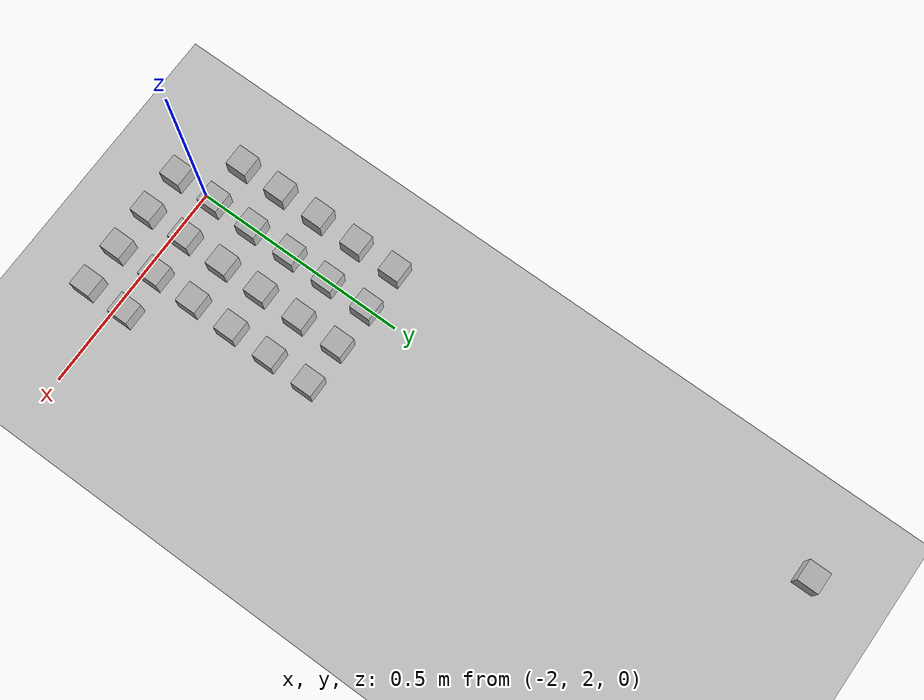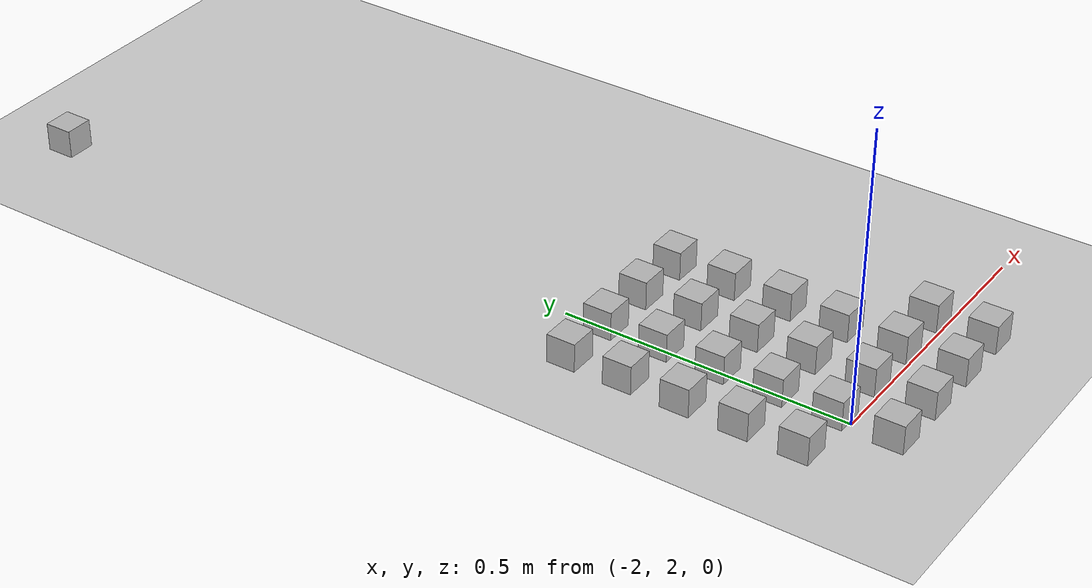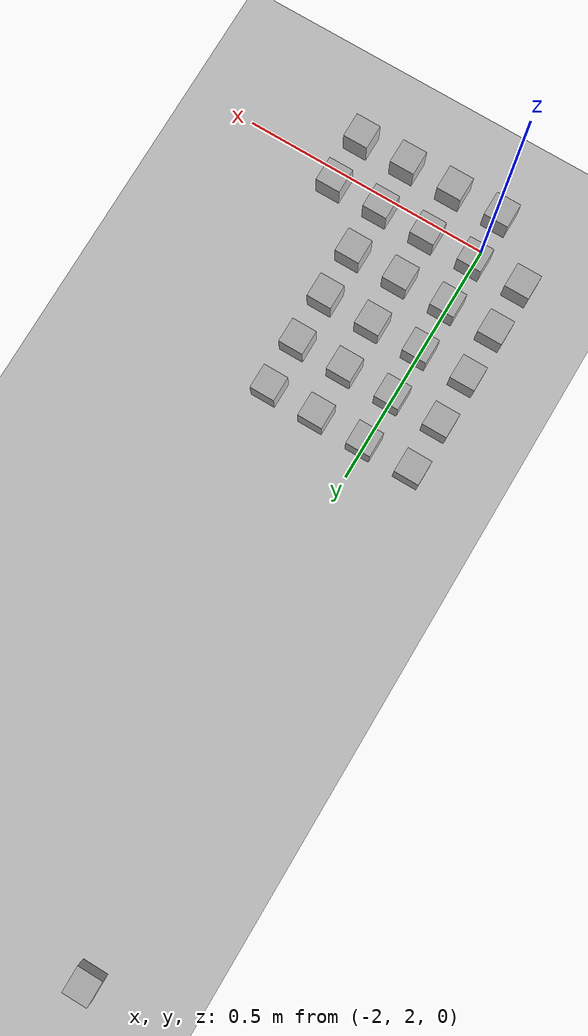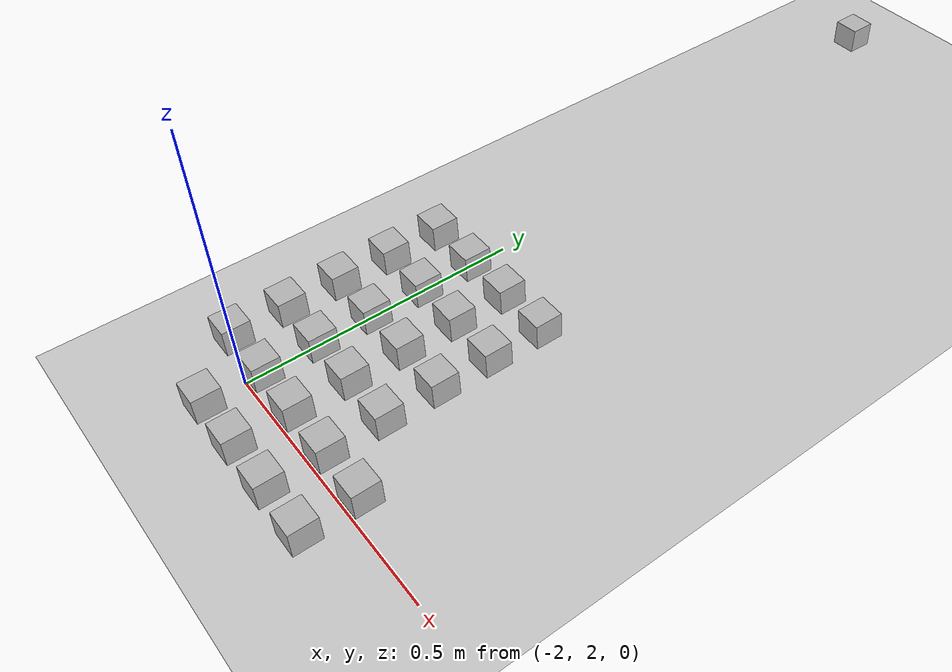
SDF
<sdf version="1.6">
 <world name="default">
  <model name="ground_plane">
   <static>1</static>
   <link name="link">
    <collision name="collision">
     <geometry><plane><normal>0 0 1</normal><size>100 100</size></plane></geometry>
     <surface><friction><ode><mu>100</mu><mu2>50</mu2></ode></friction></surface>
    </collision>
    <visual name="visual">
     <cast_shadows>0</cast_shadows>
     <geometry><plane><normal>0 0 1</normal><size>100 100</size></plane></geometry>
     <material>
      <script><uri>file://media/materials/scripts/gazebo.material</uri><name>Gazebo/Grey</name></script>
     </material>
    </visual>
   </link>
  </model>
  <model name="at18">
   <static>0</static>
   <link name="link">
    <inertial>
     <mass>0.01</mass>
     <inertia><ixx>4e-05</ixx><ixy>0</ixy><ixz>0</ixz><iyy>4e-05</iyy><iyz>0</iyz><izz>4e-05</izz></inertia>
    </inertial>
    <visual name="visual">
     <geometry><box><size>0.05 0.05 0.05</size></box></geometry>
     <material>
      <script>
       <uri>model://at0/materials/scripts</uri>
       <uri>model://at0/materials/textures</uri>
       <name>at0/Diffuse</name>
      </script>
     </material>
    </visual>
    <collision name="collision">
     <geometry><box><size>0.05 0.05 0.05</size></box></geometry>
     <surface><friction><ode><mu>0.8</mu><mu2>0.7</mu2></ode></friction></surface>
    </collision>
   </link>
   <pose>-1.99673 1.92921 0.024993 -2.9e-05 2.9e-05 -2e-06</pose>
  </model>
  <model name="at19">
   <static>0</static>
   <link name="link">
    <inertial>
     <mass>0.01</mass>
     <inertia><ixx>4e-05</ixx><ixy>0</ixy><ixz>0</ixz><iyy>4e-05</iyy><iyz>0</iyz><izz>4e-05</izz></inertia>
    </inertial>
    <visual name="visual">
     <geometry><box><size>0.05 0.05 0.05</size></box></geometry>
     <material>
      <script>
       <uri>model://at0/materials/scripts</uri>
       <uri>model://at0/materials/textures</uri>
       <name>at0/Diffuse</name>
      </script>
     </material>
    </visual>
    <collision name="collision">
     <geometry><box><size>0.05 0.05 0.05</size></box></geometry>
     <surface><friction><ode><mu>0.8</mu><mu2>0.7</mu2></ode></friction></surface>
    </collision>
   </link>
   <pose>-1.89673 1.92921 0.024993 2.9e-05 -2.9e-05 -2e-06</pose>
  </model>
  <model name="at20">
   <static>0</static>
   <link name="link">
    <inertial>
     <mass>0.01</mass>
     <inertia><ixx>4e-05</ixx><ixy>0</ixy><ixz>0</ixz><iyy>4e-05</iyy><iyz>0</iyz><izz>4e-05</izz></inertia>
    </inertial>
    <visual name="visual">
     <geometry><box><size>0.05 0.05 0.05</size></box></geometry>
     <material>
      <script>
       <uri>model://at0/materials/scripts</uri>
       <uri>model://at0/materials/textures</uri>
       <name>at0/Diffuse</name>
      </script>
     </material>
    </visual>
    <collision name="collision">
     <geometry><box><size>0.05 0.05 0.05</size></box></geometry>
     <surface><friction><ode><mu>0.8</mu><mu2>0.7</mu2></ode></friction></surface>
    </collision>
   </link>
   <pose>-1.79673 1.92921 0.024993 -2.9e-05 2.9e-05 -2e-06</pose>
  </model>
  <model name="at21">
   <static>0</static>
   <link name="link">
    <inertial>
     <mass>0.01</mass>
     <inertia><ixx>4e-05</ixx><ixy>0</ixy><ixz>0</ixz><iyy>4e-05</iyy><iyz>0</iyz><izz>4e-05</izz></inertia>
    </inertial>
    <visual name="visual">
     <geometry><box><size>0.05 0.05 0.05</size></box></geometry>
     <material>
      <script>
       <uri>model://at0/materials/scripts</uri>
       <uri>model://at0/materials/textures</uri>
       <name>at0/Diffuse</name>
      </script>
     </material>
    </visual>
    <collision name="collision">
     <geometry><box><size>0.05 0.05 0.05</size></box></geometry>
     <surface><friction><ode><mu>0.8</mu><mu2>0.7</mu2></ode></friction></surface>
    </collision>
   </link>
   <pose>-1.69673 1.92921 0.024993 2.9e-05 -2.9e-05 -2e-06</pose>
  </model>
  <model name="at25">
   <static>0</static>
   <link name="link">
    <inertial>
     <mass>0.01</mass>
     <inertia><ixx>4e-05</ixx><ixy>0</ixy><ixz>0</ixz><iyy>4e-05</iyy><iyz>0</iyz><izz>4e-05</izz></inertia>
    </inertial>
    <visual name="visual">
     <geometry><box><size>0.05 0.05 0.05</size></box></geometry>
     <material>
      <script>
       <uri>model://at0/materials/scripts</uri>
       <uri>model://at0/materials/textures</uri>
       <name>at0/Diffuse</name>
      </script>
     </material>
    </visual>
    <collision name="collision">
     <geometry><box><size>0.05 0.05 0.05</size></box></geometry>
     <surface><friction><ode><mu>0.8</mu><mu2>0.7</mu2></ode></friction></surface>
    </collision>
   </link>
   <pose>-2.09673 2.02921 0.024993 2.9e-05 -2.9e-05 -2e-06</pose>
  </model>
  <model name="at26">
   <static>0</static>
   <link name="link">
    <inertial>
     <mass>0.01</mass>
     <inertia><ixx>4e-05</ixx><ixy>0</ixy><ixz>0</ixz><iyy>4e-05</iyy><iyz>0</iyz><izz>4e-05</izz></inertia>
    </inertial>
    <visual name="visual">
     <geometry><box><size>0.05 0.05 0.05</size></box></geometry>
     <material>
      <script>
       <uri>model://at0/materials/scripts</uri>
       <uri>model://at0/materials/textures</uri>
       <name>at0/Diffuse</name>
      </script>
     </material>
    </visual>
    <collision name="collision">
     <geometry><box><size>0.05 0.05 0.05</size></box></geometry>
     <surface><friction><ode><mu>0.8</mu><mu2>0.7</mu2></ode></friction></surface>
    </collision>
   </link>
   <pose>-1.99673 2.02921 0.024993 -2.9e-05 2.9e-05 -2e-06</pose>
  </model>
  <model name="at27">
   <static>0</static>
   <link name="link">
    <inertial>
     <mass>0.01</mass>
     <inertia><ixx>4e-05</ixx><ixy>0</ixy><ixz>0</ixz><iyy>4e-05</iyy><iyz>0</iyz><izz>4e-05</izz></inertia>
    </inertial>
    <visual name="visual">
     <geometry><box><size>0.05 0.05 0.05</size></box></geometry>
     <material>
      <script>
       <uri>model://at0/materials/scripts</uri>
       <uri>model://at0/materials/textures</uri>
       <name>at0/Diffuse</name>
      </script>
     </material>
    </visual>
    <collision name="collision">
     <geometry><box><size>0.05 0.05 0.05</size></box></geometry>
     <surface><friction><ode><mu>0.8</mu><mu2>0.7</mu2></ode></friction></surface>
    </collision>
   </link>
   <pose>-1.89673 2.02921 0.024993 2.9e-05 -2.9e-05 -2e-06</pose>
  </model>
  <model name="at28">
   <static>0</static>
   <link name="link">
    <inertial>
     <mass>0.01</mass>
     <inertia><ixx>4e-05</ixx><ixy>0</ixy><ixz>0</ixz><iyy>4e-05</iyy><iyz>0</iyz><izz>4e-05</izz></inertia>
    </inertial>
    <visual name="visual">
     <geometry><box><size>0.05 0.05 0.05</size></box></geometry>
     <material>
      <script>
       <uri>model://at0/materials/scripts</uri>
       <uri>model://at0/materials/textures</uri>
       <name>at0/Diffuse</name>
      </script>
     </material>
    </visual>
    <collision name="collision">
     <geometry><box><size>0.05 0.05 0.05</size></box></geometry>
     <surface><friction><ode><mu>0.8</mu><mu2>0.7</mu2></ode></friction></surface>
    </collision>
   </link>
   <pose>-1.79673 2.02921 0.024993 -2.9e-05 2.9e-05 -2e-06</pose>
  </model>
  <model name="at29">
   <static>0</static>
   <link name="link">
    <inertial>
     <mass>0.01</mass>
     <inertia><ixx>4e-05</ixx><ixy>0</ixy><ixz>0</ixz><iyy>4e-05</iyy><iyz>0</iyz><izz>4e-05</izz></inertia>
    </inertial>
    <visual name="visual">
     <geometry><box><size>0.05 0.05 0.05</size></box></geometry>
     <material>
      <script>
       <uri>model://at0/materials/scripts</uri>
       <uri>model://at0/materials/textures</uri>
       <name>at0/Diffuse</name>
      </script>
     </material>
    </visual>
    <collision name="collision">
     <geometry><box><size>0.05 0.05 0.05</size></box></geometry>
     <surface><friction><ode><mu>0.8</mu><mu2>0.7</mu2></ode></friction></surface>
    </collision>
   </link>
   <pose>-1.69673 2.02921 0.024993 2.9e-05 -2.9e-05 -2e-06</pose>
  </model>
  <model name="at33">
   <static>0</static>
   <link name="link">
    <inertial>
     <mass>0.01</mass>
     <inertia><ixx>4e-05</ixx><ixy>0</ixy><ixz>0</ixz><iyy>4e-05</iyy><iyz>0</iyz><izz>4e-05</izz></inertia>
    </inertial>
    <visual name="visual">
     <geometry><box><size>0.05 0.05 0.05</size></box></geometry>
     <material>
      <script>
       <uri>model://at0/materials/scripts</uri>
       <uri>model://at0/materials/textures</uri>
       <name>at0/Diffuse</name>
      </script>
     </material>
    </visual>
    <collision name="collision">
     <geometry><box><size>0.05 0.05 0.05</size></box></geometry>
     <surface><friction><ode><mu>0.8</mu><mu2>0.7</mu2></ode></friction></surface>
    </collision>
   </link>
   <pose>-2.09673 2.12921 0.024993 2.9e-05 -2.9e-05 -2e-06</pose>
  </model>
  <model name="at34">
   <static>0</static>
   <link name="link">
    <inertial>
     <mass>0.01</mass>
     <inertia><ixx>4e-05</ixx><ixy>0</ixy><ixz>0</ixz><iyy>4e-05</iyy><iyz>0</iyz><izz>4e-05</izz></inertia>
    </inertial>
    <visual name="visual">
     <geometry><box><size>0.05 0.05 0.05</size></box></geometry>
     <material>
      <script>
       <uri>model://at0/materials/scripts</uri>
       <uri>model://at0/materials/textures</uri>
       <name>at0/Diffuse</name>
      </script>
     </material>
    </visual>
    <collision name="collision">
     <geometry><box><size>0.05 0.05 0.05</size></box></geometry>
     <surface><friction><ode><mu>0.8</mu><mu2>0.7</mu2></ode></friction></surface>
    </collision>
   </link>
   <pose>-1.99673 2.12921 0.024993 -2.9e-05 2.9e-05 -2e-06</pose>
  </model>
  <model name="at35">
   <static>0</static>
   <link name="link">
    <inertial>
     <mass>0.01</mass>
     <inertia><ixx>4e-05</ixx><ixy>0</ixy><ixz>0</ixz><iyy>4e-05</iyy><iyz>0</iyz><izz>4e-05</izz></inertia>
    </inertial>
    <visual name="visual">
     <geometry><box><size>0.05 0.05 0.05</size></box></geometry>
     <material>
      <script>
       <uri>model://at0/materials/scripts</uri>
       <uri>model://at0/materials/textures</uri>
       <name>at0/Diffuse</name>
      </script>
     </material>
    </visual>
    <collision name="collision">
     <geometry><box><size>0.05 0.05 0.05</size></box></geometry>
     <surface><friction><ode><mu>0.8</mu><mu2>0.7</mu2></ode></friction></surface>
    </collision>
   </link>
   <pose>-1.89673 2.12921 0.024993 2.9e-05 -2.9e-05 -2e-06</pose>
  </model>
  <model name="at36">
   <static>0</static>
   <link name="link">
    <inertial>
     <mass>0.01</mass>
     <inertia><ixx>4e-05</ixx><ixy>0</ixy><ixz>0</ixz><iyy>4e-05</iyy><iyz>0</iyz><izz>4e-05</izz></inertia>
    </inertial>
    <visual name="visual">
     <geometry><box><size>0.05 0.05 0.05</size></box></geometry>
     <material>
      <script>
       <uri>model://at0/materials/scripts</uri>
       <uri>model://at0/materials/textures</uri>
       <name>at0/Diffuse</name>
      </script>
     </material>
    </visual>
    <collision name="collision">
     <geometry><box><size>0.05 0.05 0.05</size></box></geometry>
     <surface><friction><ode><mu>0.8</mu><mu2>0.7</mu2></ode></friction></surface>
    </collision>
   </link>
   <pose>-1.79673 2.12921 0.024993 2.9e-05 -2.9e-05 -2e-06</pose>
  </model>
  <model name="at41">
   <static>0</static>
   <link name="link">
    <inertial>
     <mass>0.01</mass>
     <inertia><ixx>4e-05</ixx><ixy>0</ixy><ixz>0</ixz><iyy>4e-05</iyy><iyz>0</iyz><izz>4e-05</izz></inertia>
    </inertial>
    <visual name="visual">
     <geometry><box><size>0.05 0.05 0.05</size></box></geometry>
     <material>
      <script>
       <uri>model://at0/materials/scripts</uri>
       <uri>model://at0/materials/textures</uri>
       <name>at0/Diffuse</name>
      </script>
     </material>
    </visual>
    <collision name="collision">
     <geometry><box><size>0.05 0.05 0.05</size></box></geometry>
     <surface><friction><ode><mu>0.8</mu><mu2>0.7</mu2></ode></friction></surface>
    </collision>
   </link>
   <pose>-2.09673 2.22921 0.024993 2.9e-05 -2.9e-05 -2e-06</pose>
  </model>
  <model name="at42">
   <static>0</static>
   <link name="link">
    <inertial>
     <mass>0.01</mass>
     <inertia><ixx>4e-05</ixx><ixy>0</ixy><ixz>0</ixz><iyy>4e-05</iyy><iyz>0</iyz><izz>4e-05</izz></inertia>
    </inertial>
    <visual name="visual">
     <geometry><box><size>0.05 0.05 0.05</size></box></geometry>
     <material>
      <script>
       <uri>model://at0/materials/scripts</uri>
       <uri>model://at0/materials/textures</uri>
       <name>at0/Diffuse</name>
      </script>
     </material>
    </visual>
    <collision name="collision">
     <geometry><box><size>0.05 0.05 0.05</size></box></geometry>
     <surface><friction><ode><mu>0.8</mu><mu2>0.7</mu2></ode></friction></surface>
    </collision>
   </link>
   <pose>-1.99673 2.22921 0.024993 -2.9e-05 2.9e-05 -2e-06</pose>
  </model>
  <model name="at43">
   <static>0</static>
   <link name="link">
    <inertial>
     <mass>0.01</mass>
     <inertia><ixx>4e-05</ixx><ixy>0</ixy><ixz>0</ixz><iyy>4e-05</iyy><iyz>0</iyz><izz>4e-05</izz></inertia>
    </inertial>
    <visual name="visual">
     <geometry><box><size>0.05 0.05 0.05</size></box></geometry>
     <material>
      <script>
       <uri>model://at0/materials/scripts</uri>
       <uri>model://at0/materials/textures</uri>
       <name>at0/Diffuse</name>
      </script>
     </material>
    </visual>
    <collision name="collision">
     <geometry><box><size>0.05 0.05 0.05</size></box></geometry>
     <surface><friction><ode><mu>0.8</mu><mu2>0.7</mu2></ode></friction></surface>
    </collision>
   </link>
   <pose>-1.89673 2.22921 0.024993 -2.9e-05 2.9e-05 -2e-06</pose>
  </model>
  <model name="at44">
   <static>0</static>
   <link name="link">
    <inertial>
     <mass>0.01</mass>
     <inertia><ixx>4e-05</ixx><ixy>0</ixy><ixz>0</ixz><iyy>4e-05</iyy><iyz>0</iyz><izz>4e-05</izz></inertia>
    </inertial>
    <visual name="visual">
     <geometry><box><size>0.05 0.05 0.05</size></box></geometry>
     <material>
      <script>
       <uri>model://at0/materials/scripts</uri>
       <uri>model://at0/materials/textures</uri>
       <name>at0/Diffuse</name>
      </script>
     </material>
    </visual>
    <collision name="collision">
     <geometry><box><size>0.05 0.05 0.05</size></box></geometry>
     <surface><friction><ode><mu>0.8</mu><mu2>0.7</mu2></ode></friction></surface>
    </collision>
   </link>
   <pose>-1.79673 2.22921 0.024993 -2.9e-05 2.9e-05 -2e-06</pose>
  </model>
  <model name="at49">
   <static>0</static>
   <link name="link">
    <inertial>
     <mass>0.01</mass>
     <inertia><ixx>4e-05</ixx><ixy>0</ixy><ixz>0</ixz><iyy>4e-05</iyy><iyz>0</iyz><izz>4e-05</izz></inertia>
    </inertial>
    <visual name="visual">
     <geometry><box><size>0.05 0.05 0.05</size></box></geometry>
     <material>
      <script>
       <uri>model://at0/materials/scripts</uri>
       <uri>model://at0/materials/textures</uri>
       <name>at0/Diffuse</name>
      </script>
     </material>
    </visual>
    <collision name="collision">
     <geometry><box><size>0.05 0.05 0.05</size></box></geometry>
     <surface><friction><ode><mu>0.8</mu><mu2>0.7</mu2></ode></friction></surface>
    </collision>
   </link>
   <pose>-2.09673 2.32921 0.024993 -2.9e-05 2.9e-05 -2e-06</pose>
  </model>
  <model name="at50">
   <static>0</static>
   <link name="link">
    <inertial>
     <mass>0.01</mass>
     <inertia><ixx>4e-05</ixx><ixy>0</ixy><ixz>0</ixz><iyy>4e-05</iyy><iyz>0</iyz><izz>4e-05</izz></inertia>
    </inertial>
    <visual name="visual">
     <geometry><box><size>0.05 0.05 0.05</size></box></geometry>
     <material>
      <script>
       <uri>model://at0/materials/scripts</uri>
       <uri>model://at0/materials/textures</uri>
       <name>at0/Diffuse</name>
      </script>
     </material>
    </visual>
    <collision name="collision">
     <geometry><box><size>0.05 0.05 0.05</size></box></geometry>
     <surface><friction><ode><mu>0.8</mu><mu2>0.7</mu2></ode></friction></surface>
    </collision>
   </link>
   <pose>-1.99673 2.32921 0.024993 2.9e-05 -2.9e-05 -2e-06</pose>
  </model>
  <model name="at51">
   <static>0</static>
   <link name="link">
    <inertial>
     <mass>0.01</mass>
     <inertia><ixx>4e-05</ixx><ixy>0</ixy><ixz>0</ixz><iyy>4e-05</iyy><iyz>0</iyz><izz>4e-05</izz></inertia>
    </inertial>
    <visual name="visual">
     <geometry><box><size>0.05 0.05 0.05</size></box></geometry>
     <material>
      <script>
       <uri>model://at0/materials/scripts</uri>
       <uri>model://at0/materials/textures</uri>
       <name>at0/Diffuse</name>
      </script>
     </material>
    </visual>
    <collision name="collision">
     <geometry><box><size>0.05 0.05 0.05</size></box></geometry>
     <surface><friction><ode><mu>0.8</mu><mu2>0.7</mu2></ode></friction></surface>
    </collision>
   </link>
   <pose>-1.89673 2.32921 0.024993 2.9e-05 -2.9e-05 -2e-06</pose>
  </model>
  <model name="at52">
   <static>0</static>
   <link name="link">
    <inertial>
     <mass>0.01</mass>
     <inertia><ixx>4e-05</ixx><ixy>0</ixy><ixz>0</ixz><iyy>4e-05</iyy><iyz>0</iyz><izz>4e-05</izz></inertia>
    </inertial>
    <visual name="visual">
     <geometry><box><size>0.05 0.05 0.05</size></box></geometry>
     <material>
      <script>
       <uri>model://at0/materials/scripts</uri>
       <uri>model://at0/materials/textures</uri>
       <name>at0/Diffuse</name>
      </script>
     </material>
    </visual>
    <collision name="collision">
     <geometry><box><size>0.05 0.05 0.05</size></box></geometry>
     <surface><friction><ode><mu>0.8</mu><mu2>0.7</mu2></ode></friction></surface>
    </collision>
   </link>
   <pose>-1.79673 2.32921 0.024993 -2.9e-05 2.9e-05 -2e-06</pose>
  </model>
  <model name="at57">
   <static>0</static>
   <link name="link">
    <inertial>
     <mass>0.01</mass>
     <inertia><ixx>4e-05</ixx><ixy>0</ixy><ixz>0</ixz><iyy>4e-05</iyy><iyz>0</iyz><izz>4e-05</izz></inertia>
    </inertial>
    <visual name="visual">
     <geometry><box><size>0.05 0.05 0.05</size></box></geometry>
     <material>
      <script>
       <uri>model://at0/materials/scripts</uri>
       <uri>model://at0/materials/textures</uri>
       <name>at0/Diffuse</name>
      </script>
     </material>
    </visual>
    <collision name="collision">
     <geometry><box><size>0.05 0.05 0.05</size></box></geometry>
     <surface><friction><ode><mu>0.8</mu><mu2>0.7</mu2></ode></friction></surface>
    </collision>
   </link>
   <pose>-2.09673 2.42921 0.024993 -2.9e-05 2.9e-05 -2e-06</pose>
  </model>
  <model name="at58">
   <static>0</static>
   <link name="link">
    <inertial>
     <mass>0.01</mass>
     <inertia><ixx>4e-05</ixx><ixy>0</ixy><ixz>0</ixz><iyy>4e-05</iyy><iyz>0</iyz><izz>4e-05</izz></inertia>
    </inertial>
    <visual name="visual">
     <geometry><box><size>0.05 0.05 0.05</size></box></geometry>
     <material>
      <script>
       <uri>model://at0/materials/scripts</uri>
       <uri>model://at0/materials/textures</uri>
       <name>at0/Diffuse</name>
      </script>
     </material>
    </visual>
    <collision name="collision">
     <geometry><box><size>0.05 0.05 0.05</size></box></geometry>
     <surface><friction><ode><mu>0.8</mu><mu2>0.7</mu2></ode></friction></surface>
    </collision>
   </link>
   <pose>-1.99673 2.42921 0.024993 2.9e-05 -2.9e-05 -2e-06</pose>
  </model>
  <model name="at59">
   <static>0</static>
   <link name="link">
    <inertial>
     <mass>0.01</mass>
     <inertia><ixx>4e-05</ixx><ixy>0</ixy><ixz>0</ixz><iyy>4e-05</iyy><iyz>0</iyz><izz>4e-05</izz></inertia>
    </inertial>
    <visual name="visual">
     <geometry><box><size>0.05 0.05 0.05</size></box></geometry>
     <material>
      <script>
       <uri>model://at0/materials/scripts</uri>
       <uri>model://at0/materials/textures</uri>
       <name>at0/Diffuse</name>
      </script>
     </material>
    </visual>
    <collision name="collision">
     <geometry><box><size>0.05 0.05 0.05</size></box></geometry>
     <surface><friction><ode><mu>0.8</mu><mu2>0.7</mu2></ode></friction></surface>
    </collision>
   </link>
   <pose>-1.89673 2.42921 0.024993 -2.9e-05 2.9e-05 -2e-06</pose>
  </model>
  <model name="at60">
   <static>0</static>
   <link name="link">
    <inertial>
     <mass>0.01</mass>
     <inertia><ixx>4e-05</ixx><ixy>0</ixy><ixz>0</ixz><iyy>4e-05</iyy><iyz>0</iyz><izz>4e-05</izz></inertia>
    </inertial>
    <visual name="visual">
     <geometry><box><size>0.05 0.05 0.05</size></box></geometry>
     <material>
      <script>
       <uri>model://at0/materials/scripts</uri>
       <uri>model://at0/materials/textures</uri>
       <name>at0/Diffuse</name>
      </script>
     </material>
    </visual>
    <collision name="collision">
     <geometry><box><size>0.05 0.05 0.05</size></box></geometry>
     <surface><friction><ode><mu>0.8</mu><mu2>0.7</mu2></ode></friction></surface>
    </collision>
   </link>
   <pose>-1.79673 2.42921 0.024993 2.9e-05 -2.9e-05 -2e-06</pose>
  </model>
  <model name="at255">
   <static>0</static>
   <link name="link">
    <inertial>
     <mass>0.01</mass>
     <inertia><ixx>4e-05</ixx><ixy>0</ixy><ixz>0</ixz><iyy>4e-05</iyy><iyz>0</iyz><izz>4e-05</izz></inertia>
    </inertial>
    <visual name="visual">
     <geometry><box><size>0.05 0.05 0.05</size></box></geometry>
     <material>
      <script>
       <uri>model://at0/materials/scripts</uri>
       <uri>model://at0/materials/textures</uri>
       <name>at0/Diffuse</name>
      </script>
     </material>
    </visual>
    <collision name="collision">
     <geometry><box><size>0.05 0.05 0.05</size></box></geometry>
     <surface><friction><ode><mu>0.8</mu><mu2>0.7</mu2></ode></friction></surface>
    </collision>
   </link>
   <pose>-2.06596 3.47699 0.024993 2.9e-05 -2.9e-05 -2e-06</pose>
  </model>
 </world>
</sdf>
